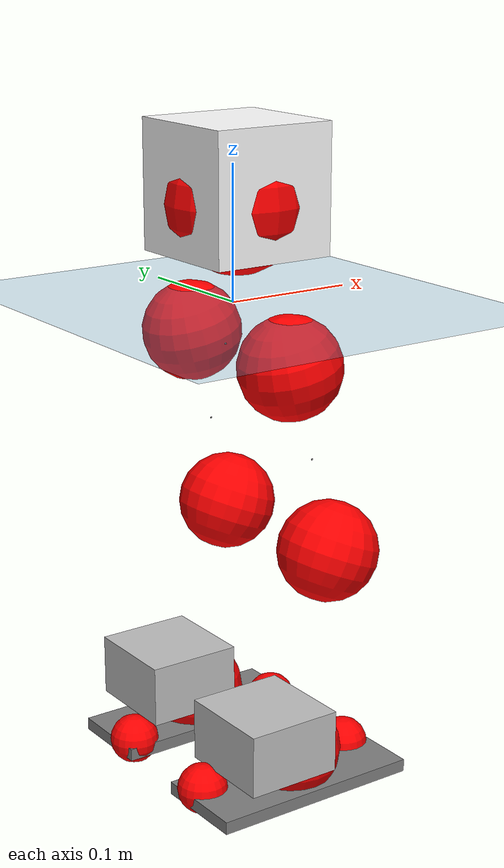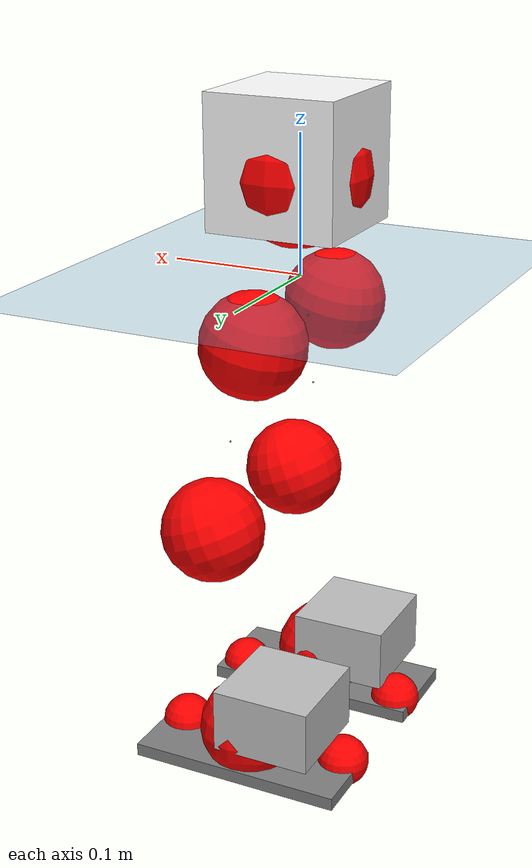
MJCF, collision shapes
<mujoco model="pi_12dof_release_v1">
  <compiler angle="radian" assetdir="assets" balanceinertia="true" inertiafromgeom="false"/>

  <option timestep="0.005" density="1.2" viscosity="2e-05"/>

  <size nkey="1"/>

  <visual>
    <quality shadowsize="8192"/>
    <map shadowclip="0.5"/>
  </visual>

  <default>
    <default class="/">
      <joint armature="0.01" damping="0.01" frictionloss="0.01"/>
      <geom contype="0" conaffinity="0" group="1" solref="-1000 -80"/>
      <site size="0.01 0.005 0.005" group="5"/>
      <general forcelimited="true" biastype="affine" gainprm="20" biasprm="0 -20 -0.5"/>
      <default class="foot">
        <geom size="0.0845 0.036 0.005" type="box" condim="6" group="4" priority="1" friction="0.9 0.2 0.2" solimp="0.015 1 0.005"/>
      </default>
      <default class="reward_collision_sphere">
        <geom group="5" rgba="1 0 0 1"/>
      </default>
    </default>
  </default>

  <asset>
    <texture type="skybox" colorspace="auto" name="//unnamed_texture_0" builtin="gradient" rgb1="0.95 0.95 0.95" rgb2="0.95 0.95 0.95" width="100" height="600"/>
    <texture type="2d" colorspace="auto" name="texplane" builtin="checker" rgb1="0.345 0.575 0.748" rgb2="0.345 0.575 0.748" markrgb="1 1 1" width="512" height="512"/>
    <material name="MatPlane" class="/" texture="texplane" texuniform="true" texrepeat="2 2" specular="0.9"/>
    <mesh name="baselink_1" class="/" file="baselink_1.STL"/>
    <mesh name="r_hip_pitch_link" class="/" file="r_hip_pitch_link.STL"/>
    <mesh name="r_hip_roll_link" class="/" file="r_hip_roll_link.STL"/>
    <mesh name="r_thigh_link" class="/" file="r_thigh_link.STL"/>
    <mesh name="r_calf_link" class="/" file="r_calf_link.STL"/>
    <mesh name="r_ankle_pitch_link" class="/" file="r_ankle_pitch_link.STL"/>
    <mesh name="r_ankle_roll_link" class="/" file="r_ankle_roll_link.STL"/>
    <mesh name="l_hip_pitch_link" class="/" file="l_hip_pitch_link.STL"/>
    <mesh name="l_hip_roll_link" class="/" file="l_hip_roll_link.STL"/>
    <mesh name="l_thigh_link" class="/" file="l_thigh_link.STL"/>
    <mesh name="l_calf_link" class="/" file="l_calf_link.STL"/>
    <mesh name="l_ankle_pitch_link" class="/" file="l_ankle_pitch_link.STL"/>
    <mesh name="l_ankle_roll_link" class="/" file="l_ankle_roll_link.STL"/>
  </asset>

  <worldbody>
    <geom name="floor" class="/" size="100 100 0.125" type="plane" group="0" material="MatPlane"/>
    <light name="toplight_shadow" class="/" pos="0 0 5" dir="0.0990148 0.0990148 -0.990148" type="directional" ambient="0.04 0.04 0.04" diffuse="0.55 0.55 0.55" specular="0.12 0.12 0.12"/>
    <light name="toplight_fill" class="/" pos="0 0 5" dir="0.0990148 0.0990148 -0.990148" type="directional" castshadow="false" ambient="0.04 0.04 0.04" diffuse="0.3 0.3 0.3" specular="0.08 0.08 0.08"/>
    <body name="trunk" pos="0.00233695 -0.000824865 -0.000545587" quat="1 -0.000392546 -9.14379e-05 -0.000242287">
      <inertial pos="0.00248443 0.000535083 0.0422417" quat="0.695498 0.00955067 0.00938825 0.718404" mass="1.85712" diaginertia="0.00938008 0.0036626 0.00525138"/>
      <joint name="//unnamed_joint_0" type="free"/>
      <geom name="//unnamed_geom_1" class="/" type="mesh" density="0" rgba="1 1 1 1" mesh="baselink_1"/>
      <geom name="//unnamed_geom_2" class="/" size="0.0476364 0.0476364 0.0476364" pos="0 0 0.0837622" type="box" rgba="1 1 1 1"/>
      <geom name="//unnamed_geom_3" class="reward_collision_sphere" size="0.0524001" pos="0 0 0.0732919"/>
      <site name="imu" class="/" pos="-0.00520262 0.000215363 -0.0130034" size="0.00952729"/>
      <camera name="track" class="/" pos="0 -1.66028 0" quat="0.707107 0.707107 0 0" mode="trackcom"/>
      <camera name="ego_camera" class="/" pos="0.0735766 0 0.188465" quat="-0.5 -0.5 0.5 0.5"/>
      <body name="r_hip_pitch_link" pos="0.00142485 -0.0191292 -0.0346378" quat="0.992282 0.000566293 -0.124001 0.000764194">
        <inertial pos="-0.0014221 -0.0466117 2.29388e-05" quat="-0.0184529 0.705983 -0.0274359 0.707456" mass="0.321773" diaginertia="9.91148e-05 3.7842e-05 0.000103907"/>
        <joint name="r_hip_pitch_joint" class="/" pos="0 0 0" axis="-0.0132261 -0.999911 -0.00160126" stiffness="0.00201452" range="-1.69853 1.2684" armature="0.00947234" damping="0.0253019" frictionloss="0.00950735"/>
        <geom name="//unnamed_geom_4" class="/" type="mesh" density="0" rgba="0.75294 0.75294 0.75294 1" mesh="r_hip_pitch_link"/>
        <geom name="//unnamed_geom_5" class="/" size="0.000476364 0.000476364 0.000476364" type="box" rgba="0.75294 0.75294 0.75294 1"/>
        <body name="r_hip_roll_link" pos="-0.000928385 -0.0457493 0.000239773" quat="1 -3.30326e-05 -4.44146e-05 -2.10868e-05">
          <inertial pos="-0.00138546 0.000360918 -0.0668629" quat="0.706342 -0.0792654 -0.0807207 0.698772" mass="0.342332" diaginertia="0.000308098 0.000111158 0.00016332"/>
          <joint name="r_hip_roll_joint" class="/" pos="0 0 0" axis="-0.999951 0.00439282 0.00890277" range="-0.123612 0.54114" armature="0.00921676" damping="0.00532622" frictionloss="0.0088744"/>
          <geom name="//unnamed_geom_6" class="/" type="mesh" density="0" rgba="0.75294 0.75294 0.75294 1" mesh="r_hip_roll_link"/>
          <geom name="//unnamed_geom_7" class="/" size="0.000476364 0.000476364 0.000476364" type="box" rgba="0.75294 0.75294 0.75294 1"/>
          <geom name="//unnamed_geom_8" class="reward_collision_sphere" size="0.0381091"/>
          <body name="r_thigh_link" pos="0.000798852 -0.00210445 -0.0726321" quat="1 0.000510201 -0.000392892 -0.000118094">
            <inertial pos="0.000145095 0.00209246 -0.0499793" quat="0.739032 0.673558 0.0122829 -0.000824256" mass="0.0988097" diaginertia="0.000112034 3.74878e-05 7.14696e-05"/>
            <joint name="r_thigh_joint" class="/" pos="0 0 0" axis="0.00547746 0.0020142 -0.999983" range="-0.275361 0.645493" armature="0.00935806" damping="0.0041042" frictionloss="0.00972385"/>
            <geom name="//unnamed_geom_9" class="/" type="mesh" density="0" rgba="0.75294 0.75294 0.75294 1" mesh="r_thigh_link"/>
            <geom name="//unnamed_geom_10" class="/" size="0.000476364 0.000476364 0.000476364" type="box" rgba="0.75294 0.75294 0.75294 1"/>
            <body name="r_calf_link" pos="-0.00250539 0.000298804 -0.0753321" quat="0.947671 -0.000207554 0.319247 0.000114871">
              <inertial pos="0.00224713 -0.00176473 -0.0756418" quat="0.999966 -0.0041997 -0.0017096 0.00692542" mass="0.725186" diaginertia="0.00327954 0.00140739 0.000226513"/>
              <joint name="r_calf_joint" class="/" pos="0 0 0" axis="0.00929373 -0.99995 0.0037699" range="-1.66007 0.64561" armature="0.00948867" damping="0.0119924" frictionloss="0.00968912"/>
              <geom name="//unnamed_geom_11" class="/" type="mesh" density="0" rgba="0.75294 0.75294 0.75294 1" mesh="r_calf_link"/>
              <geom name="//unnamed_geom_12" class="/" size="0.000476364 0.000476364 0.000476364" type="box" rgba="0.75294 0.75294 0.75294 1"/>
              <geom name="//unnamed_geom_13" class="reward_collision_sphere" size="0.0381091"/>
              <body name="r_ankle_pitch_link" pos="0.00053859 0.000535166 -0.145969" quat="0.980056 3.06594e-05 -0.198721 -1.52117e-05">
                <inertial pos="0.00476206 0.0056399 -0.0012256" quat="0.00211132 0.706636 -0.00277291 0.707568" mass="0.150051" diaginertia="0.000279197 8.59819e-05 0.000148591"/>
                <joint name="r_ankle_pitch_joint" class="/" pos="0 0 0" axis="0.00626226 -0.99998 0.000528669" range="-1.31266 0.497662" armature="0.00862671" damping="0.00677853" frictionloss="0.00890517"/>
                <geom name="//unnamed_geom_14" class="/" type="mesh" density="0" rgba="0.75294 0.75294 0.75294 1" mesh="r_ankle_pitch_link"/>
                <geom name="//unnamed_geom_15" class="/" size="0.0371564 0.0381091 0.0238182" type="box" rgba="0.75294 0.75294 0.75294 1"/>
                <body name="r_ankle_roll_link" pos="0.0750175 0.00282783 0.00237312" quat="0.999999 -0.00115065 0.00045997 0.000543296">
                  <inertial pos="-0.0208339 -0.000560644 -0.0132774" quat="0.560531 0.42853 0.435288 0.559189" mass="0.438152" diaginertia="0.00102977 0.000418738 0.00036915"/>
                  <joint name="r_ankle_roll_joint" class="/" pos="0 0 0" axis="-0.999924 -0.00930968 0.00809308" range="-0.15338 0.154646" armature="0.00904978" damping="0.0198368" frictionloss="0.00965341"/>
                  <geom name="//unnamed_geom_16" class="/" type="mesh" density="0" rgba="0.75294 0.75294 0.75294 1" mesh="r_ankle_roll_link"/>
                  <geom name="//unnamed_geom_17" class="/" type="mesh" rgba="0.75294 0.75294 0.75294 1" mesh="r_ankle_roll_link"/>
                  <geom name="right_foot" class="foot" size="0.082922 0.0366461 0.0048621" pos="-0.0500321 0 -0.0460692"/>
                  <geom name="//unnamed_geom_19" class="reward_collision_sphere" size="0.0381091" pos="-0.049051 0 -0.0209405"/>
                  <geom name="//unnamed_geom_20" class="reward_collision_sphere" size="0.0190546" pos="0.0147153 0.0166028 -0.0418811"/>
                  <geom name="//unnamed_geom_21" class="reward_collision_sphere" size="0.0190546" pos="-0.117722 0.0166028 -0.0418811"/>
                  <site name="right_foot" class="foot" pos="-0.0500321 0 -0.0460692" size="0.00952729"/>
                </body>
              </body>
            </body>
          </body>
        </body>
      </body>
      <body name="l_hip_pitch_link" pos="0.00214685 0.0174193 -0.0344568" quat="0.992165 -3.9326e-05 -0.124932 4.79014e-05">
        <inertial pos="0.00337635 0.0420923 -2.43304e-05" quat="-0.0288978 0.702069 0.0288111 0.710939" mass="0.338984" diaginertia="0.000118402 4.16324e-05 0.000123632"/>
        <joint name="l_hip_pitch_joint" class="/" pos="0 0 0" axis="0.0101082 0.999939 -0.00452636" range="-1.29641 1.74714" armature="0.00828128" damping="0.00650097" frictionloss="0.00940767"/>
        <geom name="//unnamed_geom_22" class="/" type="mesh" density="0" rgba="0.75294 0.75294 0.75294 1" mesh="l_hip_pitch_link"/>
        <geom name="//unnamed_geom_23" class="/" size="0.000476364 0.000476364 0.000476364" type="box" rgba="0.75294 0.75294 0.75294 1"/>
        <body name="l_hip_roll_link" pos="0.00118846 0.0462339 0.000721598" quat="1 -0.000269718 0.000132025 -0.000248403">
          <inertial pos="-0.00238843 0.00256788 -0.0638568" quat="0.704368 -0.0708096 -0.079328 0.701825" mass="0.338376" diaginertia="0.000303854 0.000112067 0.000159018"/>
          <joint name="l_hip_roll_joint" class="/" pos="0 0 0" axis="-0.999997 -0.000797874 0.00241907" range="-0.499653 0.105391" armature="0.0105388" damping="0" frictionloss="0.00936698"/>
          <geom name="//unnamed_geom_24" class="/" type="mesh" density="0" rgba="0.75294 0.75294 0.75294 1" mesh="l_hip_roll_link"/>
          <geom name="//unnamed_geom_25" class="/" size="0.000476364 0.000476364 0.000476364" type="box" rgba="0.75294 0.75294 0.75294 1"/>
          <geom name="//unnamed_geom_26" class="reward_collision_sphere" size="0.0381091"/>
          <body name="l_thigh_link" pos="-0.000599932 0.0016125 -0.0752038" quat="0.999999 9.88128e-05 -0.00117095 -0.000529233">
            <inertial pos="7.27681e-05 -0.00138981 -0.0472377" quat="0.6751 0.737726 0.000440978 0.000166222" mass="0.0941442" diaginertia="0.000112954 3.73965e-05 7.27275e-05"/>
            <joint name="l_thigh_joint" class="/" pos="0 0 0" axis="-0.00620801 -0.00102535 -0.99998" range="-0.65251 0.296376" armature="0.00946603" damping="0" frictionloss="0.00971843"/>
            <geom name="//unnamed_geom_27" class="/" type="mesh" density="0" rgba="0.75294 0.75294 0.75294 1" mesh="l_thigh_link"/>
            <geom name="//unnamed_geom_28" class="/" size="0.000476364 0.000476364 0.000476364" type="box" rgba="0.75294 0.75294 0.75294 1"/>
            <body name="l_calf_link" pos="-0.00320204 0.000655828 -0.0726624" quat="0.947502 0.000133471 0.31975 -0.000283354">
              <inertial pos="0.00158998 0.00230151 -0.0728407" quat="0.999868 0.0129884 -0.00843585 0.00482439" mass="0.707477" diaginertia="0.00323448 0.00140429 0.000222982"/>
              <joint name="l_calf_joint" class="/" pos="0 0 0" axis="-0.00596575 0.999921 0.0110419" stiffness="0.00254664" range="-0.625885 1.63658" armature="0.00947255" damping="0.00953725" frictionloss="0.00855171"/>
              <geom name="//unnamed_geom_29" class="/" type="mesh" density="0" rgba="0.75294 0.75294 0.75294 1" mesh="l_calf_link"/>
              <geom name="//unnamed_geom_30" class="/" size="0.000476364 0.000476364 0.000476364" type="box" rgba="0.75294 0.75294 0.75294 1"/>
              <geom name="//unnamed_geom_31" class="reward_collision_sphere" size="0.0381091"/>
              <body name="l_ankle_pitch_link" pos="0.000140514 0.00119844 -0.144657" quat="0.98005 -0.000388538 -0.198752 2.58441e-05">
                <inertial pos="0.00359534 -0.00133707 -0.00107112" quat="-0.000731933 0.710528 0.0143828 0.703522" mass="0.153386" diaginertia="0.000277045 8.93079e-05 0.000155166"/>
                <joint name="l_ankle_pitch_joint" class="/" pos="0 0 0" axis="0.00397221 0.999988 0.00292816" range="-0.488655 1.32111" armature="0.0100735" damping="0" frictionloss="0.00923625"/>
                <geom name="//unnamed_geom_32" class="/" type="mesh" density="0" rgba="0.75294 0.75294 0.75294 1" mesh="l_ankle_pitch_link"/>
                <geom name="//unnamed_geom_33" class="/" size="0.0371564 0.0381091 0.0238182" type="box" rgba="0.75294 0.75294 0.75294 1"/>
                <body name="l_ankle_roll_link" pos="0.0747566 0.00129119 -0.000301145" quat="1 1.05703e-07 5.09812e-08 1.00076e-07">
                  <inertial pos="-0.0265564 -0.00289927 -0.0126534" quat="0.56097 0.431891 0.434438 0.556818" mass="0.458027" diaginertia="0.00101044 0.000415685 0.000355669"/>
                  <joint name="l_ankle_roll_joint" class="/" pos="0 0 0" axis="-0.999988 -0.00423213 0.00233927" stiffness="0.00695917" range="-0.170143 0.138577" armature="0.00948466" damping="0.0196298" frictionloss="0.0106104"/>
                  <geom name="//unnamed_geom_34" class="/" type="mesh" density="0" rgba="0.75294 0.75294 0.75294 1" mesh="l_ankle_roll_link"/>
                  <geom name="//unnamed_geom_35" class="/" type="mesh" rgba="0.75294 0.75294 0.75294 1" mesh="l_ankle_roll_link"/>
                  <geom name="left_foot" class="foot" size="0.0811161 0.0333887 0.00483881" pos="-0.0500321 0 -0.0460692"/>
                  <geom name="//unnamed_geom_37" class="reward_collision_sphere" size="0.0381091" pos="-0.049051 0 -0.0209405"/>
                  <geom name="//unnamed_geom_38" class="reward_collision_sphere" size="0.0190546" pos="0.0147153 -0.0166028 -0.0418811"/>
                  <geom name="//unnamed_geom_39" class="reward_collision_sphere" size="0.0190546" pos="-0.117722 -0.0166028 -0.0418811"/>
                  <site name="left_foot" class="foot" pos="-0.0500321 0 -0.0460692" size="0.00952729"/>
                </body>
              </body>
            </body>
          </body>
        </body>
      </body>
    </body>
  </worldbody>

  <contact>
    <pair class="/" geom1="floor" geom2="right_foot" name="//unnamed_contact_1"/>
    <pair class="/" geom1="floor" geom2="left_foot" name="//unnamed_contact_0"/>
  </contact>

  <actuator>
    <general name="r_hip_pitch_joint" class="/" joint="r_hip_pitch_joint" forcerange="-19.6408 19.6408" gainprm="19.2738" biasprm="0 -19.2738 -0.474179"/>
    <general name="r_hip_roll_joint" class="/" joint="r_hip_roll_joint" forcerange="-21.8572 21.8572" gainprm="19.2738" biasprm="0 -19.2738 -0.474179"/>
    <general name="r_thigh_joint" class="/" joint="r_thigh_joint" forcerange="-20.6884 20.6884" gainprm="19.2738" biasprm="0 -19.2738 -0.474179"/>
    <general name="r_calf_joint" class="/" joint="r_calf_joint" forcerange="-21.9463 21.9463" gainprm="19.2738" biasprm="0 -19.2738 -0.474179"/>
    <general name="r_ankle_pitch_joint" class="/" joint="r_ankle_pitch_joint" forcerange="-20.7489 20.7489" gainprm="19.2738" biasprm="0 -19.2738 -0.474179"/>
    <general name="r_ankle_roll_joint" class="/" joint="r_ankle_roll_joint" forcerange="-19.1941 19.1941" gainprm="19.2738" biasprm="0 -19.2738 -0.474179"/>
    <general name="l_hip_pitch_joint" class="/" joint="l_hip_pitch_joint" forcerange="-20.0364 20.0364" gainprm="19.2738" biasprm="0 -19.2738 -0.474179"/>
    <general name="l_hip_roll_joint" class="/" joint="l_hip_roll_joint" forcerange="-18.4883 18.4883" gainprm="19.2738" biasprm="0 -19.2738 -0.474179"/>
    <general name="l_thigh_joint" class="/" joint="l_thigh_joint" forcerange="-19.5267 19.5267" gainprm="19.2738" biasprm="0 -19.2738 -0.474179"/>
    <general name="l_calf_joint" class="/" joint="l_calf_joint" forcerange="-19.8766 19.8766" gainprm="19.2738" biasprm="0 -19.2738 -0.474179"/>
    <general name="l_ankle_pitch_joint" class="/" joint="l_ankle_pitch_joint" forcerange="-20.1209 20.1209" gainprm="19.2738" biasprm="0 -19.2738 -0.474179"/>
    <general name="l_ankle_roll_joint" class="/" joint="l_ankle_roll_joint" forcerange="-20.3337 20.3337" gainprm="19.2738" biasprm="0 -19.2738 -0.474179"/>
  </actuator>

  <sensor>
    <gyro site="imu" name="imu_angular_velocity"/>
    <velocimeter site="imu" name="imu_linear_velocity"/>
    <framelinvel objtype="site" objname="left_foot" name="left_foot_global_linear_velocity"/>
    <framelinvel objtype="site" objname="right_foot" name="right_foot_global_linear_velocity"/>
  </sensor>

  <keyframe>
    <key name="home" qpos="0 0 0.291 1 0 0 0 0.4 0 0 -0.8 0.4 0 -0.4 0 0 0.8 -0.4 0"/>
  </keyframe>
</mujoco>
